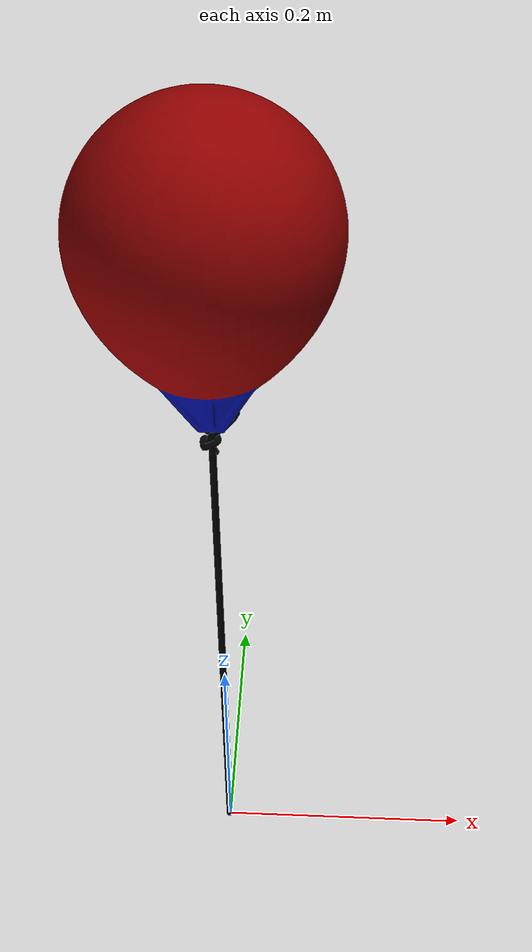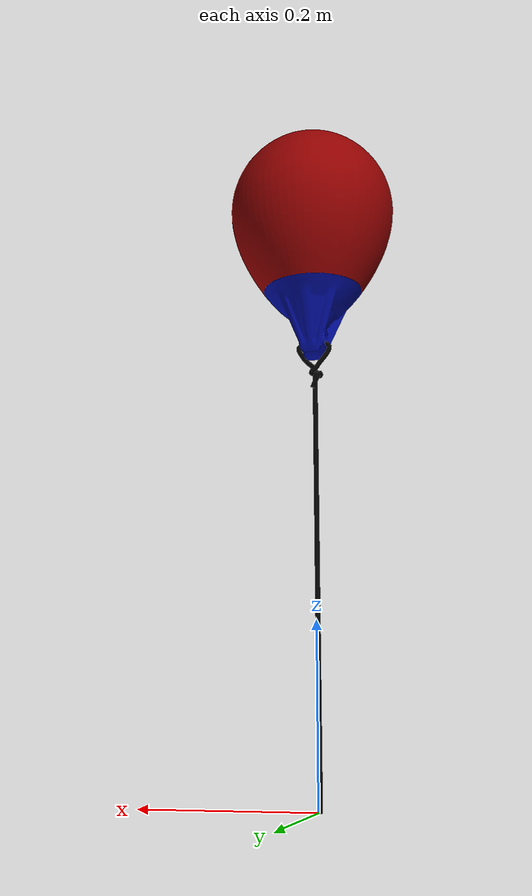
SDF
<?xml version="1.0"?>
<sdf version="1.6">
	<model name="robosub_buoy">
		<static>true</static>
    	<pose>0 0 0 0 0 0</pose>
		<link name="robosub_buoy">
			<pose>0 0 0 0 0 0</pose>
			<collision name="robosub_buoy_col">
				<pose>0 0 0 0 0 0</pose>
				<geometry>
					<mesh>
						<uri>model://robosub_buoy/meshes/buoy.dae</uri>
					</mesh>
				</geometry>
			</collision>
			<visual name="robosub_buoy_vis">
				<pose>0 0 0 0 0 0</pose>
				<geometry>
					<mesh>
						<uri>model://robosub_buoy/meshes/buoy.dae</uri>
					</mesh>
				</geometry>
			</visual>

		</link>
	</model>
</sdf>
